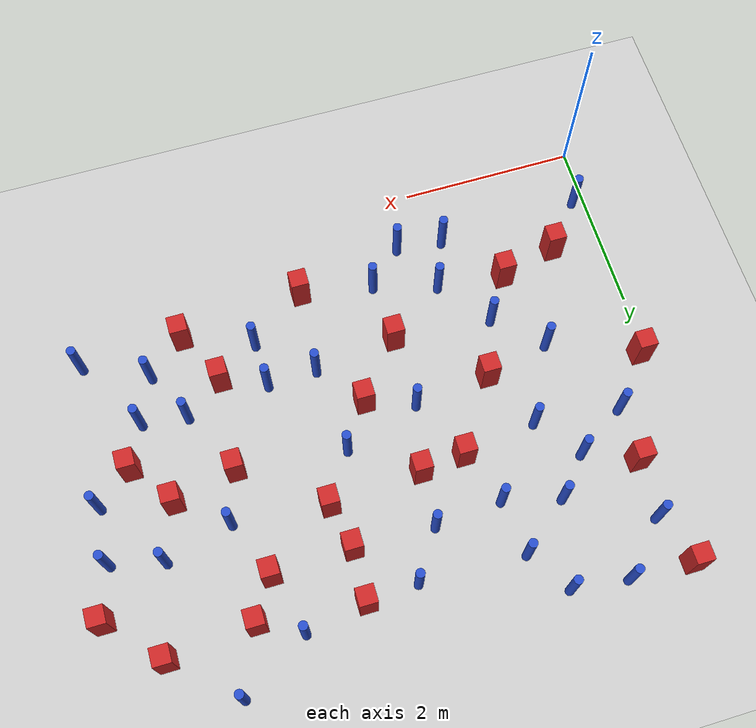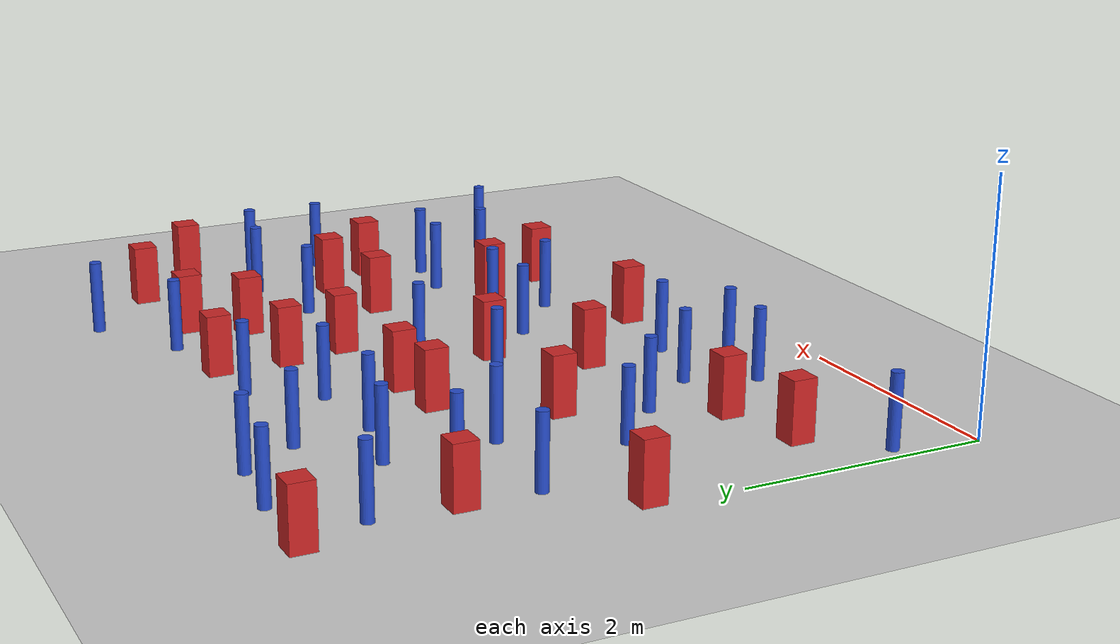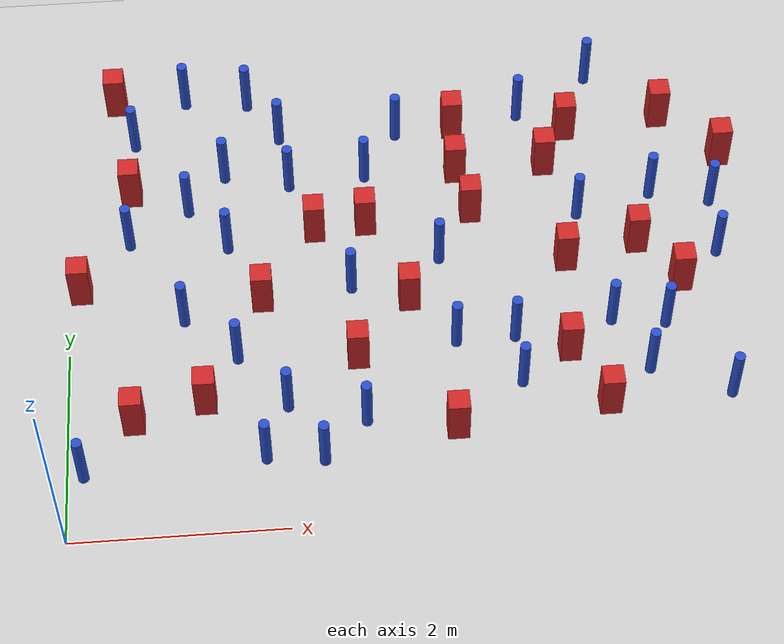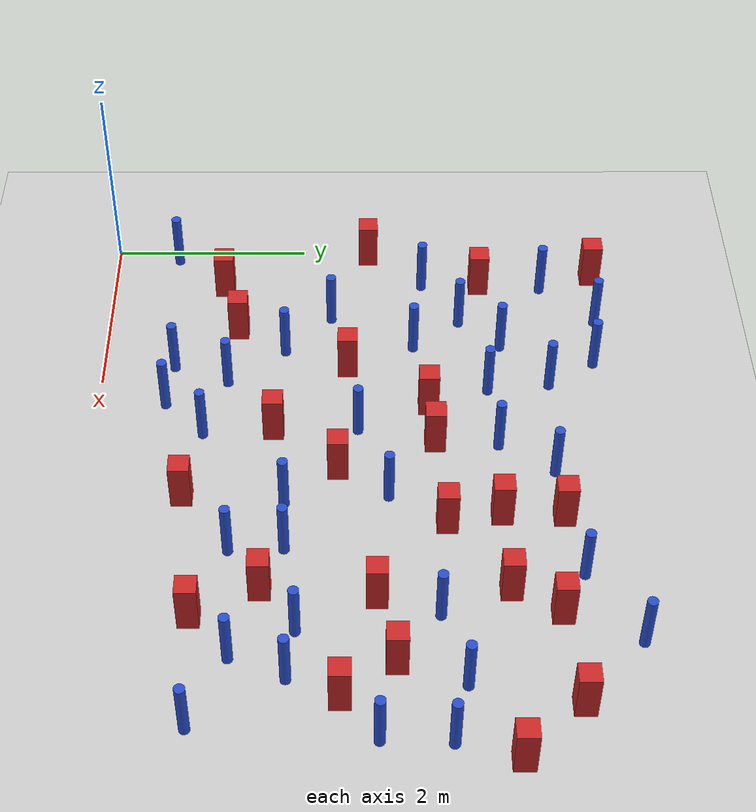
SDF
<sdf version="1.6">
 <world name="default">
  <model name="ground_plane">
   <static>1</static>
   <link name="link">
    <collision name="collision">
     <geometry><plane><normal>0 0 1</normal><size>100 100</size></plane></geometry>
     <surface><friction><ode><mu>100</mu><mu2>50</mu2></ode></friction></surface>
    </collision>
    <visual name="visual">
     <cast_shadows>0</cast_shadows>
     <geometry><plane><normal>0 0 1</normal><size>100 100</size></plane></geometry>
     <material>
      <ambient>1.0 1.0 1.0 1.0</ambient>
      <diffuse>0.8 0.8 0.8 1.0</diffuse>
      <specular>0.01 0.01 0.01 1.000000</specular>
     </material>
    </visual>
   </link>
  </model>
  <model name="pole_obstacle3">
   <static>true</static>
   <pose>4.94489135141 3.32337684646 7.38925637345e-09 -8.47170692798e-08 1.24976764937e-08 -1.74513093023e-07</pose>
   <link name="link">
    <pose>0 0 0.3 0 -0 0</pose>
    <inertial>
     <mass>1</mass>
     <inertia><ixx>0.145833</ixx><ixy>0</ixy><ixz>0</ixz><iyy>0.145833</iyy><iyz>0</iyz><izz>0.125</izz></inertia>
    </inertial>
    <collision name="collision">
     <geometry><cylinder><radius>0.05</radius><length>.6</length></cylinder></geometry>
    </collision>
    <visual name="visual">
     <geometry><cylinder><radius>0.05</radius><length>.6</length></cylinder></geometry>
     <material>
      <script><name>Gazebo/Blue</name><uri>file://media/materials/scripts/gazebo.material</uri></script>
     </material>
    </visual>
   </link>
  </model>
  <model name="pole_obstacle4">
   <static>true</static>
   <pose>2.73553386791 1.0680887343 7.38925637345e-09 -8.471706928e-08 1.24976765152e-08 -1.74513093012e-07</pose>
   <link name="link">
    <pose>0 0 0.3 0 -0 0</pose>
    <inertial>
     <mass>1</mass>
     <inertia><ixx>0.145833</ixx><ixy>0</ixy><ixz>0</ixz><iyy>0.145833</iyy><iyz>0</iyz><izz>0.125</izz></inertia>
    </inertial>
    <collision name="collision">
     <geometry><cylinder><radius>0.05</radius><length>.6</length></cylinder></geometry>
    </collision>
    <visual name="visual">
     <geometry><cylinder><radius>0.05</radius><length>.6</length></cylinder></geometry>
     <material>
      <script><name>Gazebo/Blue</name><uri>file://media/materials/scripts/gazebo.material</uri></script>
     </material>
    </visual>
   </link>
  </model>
  <model name="pole_obstacle5">
   <static>true</static>
   <pose>4.18884010764 1.90581035979 7.38925637345e-09 -8.471706928e-08 1.24976765134e-08 -1.74513093015e-07</pose>
   <link name="link">
    <pose>0 0 0.3 0 -0 0</pose>
    <inertial>
     <mass>1</mass>
     <inertia><ixx>0.145833</ixx><ixy>0</ixy><ixz>0</ixz><iyy>0.145833</iyy><iyz>0</iyz><izz>0.125</izz></inertia>
    </inertial>
    <collision name="collision">
     <geometry><cylinder><radius>0.05</radius><length>.6</length></cylinder></geometry>
    </collision>
    <visual name="visual">
     <geometry><cylinder><radius>0.05</radius><length>.6</length></cylinder></geometry>
     <material>
      <script><name>Gazebo/Blue</name><uri>file://media/materials/scripts/gazebo.material</uri></script>
     </material>
    </visual>
   </link>
  </model>
  <model name="square_post_obstacle12">
   <static>true</static>
   <pose>2.69776393869 1.7626080825 1.91545236811e-07 -7.35059704564e-06 1.12565212e-07 2.39332434364e-05</pose>
   <link name="link">
    <pose>0 0 0.25 0 -0 0</pose>
    <inertial>
     <mass>100</mass>
     <inertia>
      <ixx>0.166667</ixx>
      <ixy>0</ixy>
      <ixz>0</ixz>
      <iyy>0.166667</iyy>
      <iyz>0</iyz>
      <izz>0.166667</izz>
     </inertia>
    </inertial>
    <collision name="collision"><geometry><box><size>.2 .2 .5</size></box></geometry></collision>
    <visual name="visual">
     <geometry><box><size>.2 .2 .5</size></box></geometry>
     <material>
      <script><name>Gazebo/Red</name><uri>file://media/materials/scripts/gazebo.material</uri></script>
     </material>
    </visual>
   </link>
  </model>
  <model name="square_post_obstacle14">
   <static>true</static>
   <pose>3.55823253069 0.921977844736 1.91545236811e-07 -7.35059704564e-06 1.12565212e-07 2.39332434364e-05</pose>
   <link name="link">
    <pose>0 0 0.25 0 -0 0</pose>
    <inertial>
     <mass>100</mass>
     <inertia>
      <ixx>0.166667</ixx>
      <ixy>0</ixy>
      <ixz>0</ixz>
      <iyy>0.166667</iyy>
      <iyz>0</iyz>
      <izz>0.166667</izz>
     </inertia>
    </inertial>
    <collision name="collision"><geometry><box><size>.2 .2 .5</size></box></geometry></collision>
    <visual name="visual">
     <geometry><box><size>.2 .2 .5</size></box></geometry>
     <material>
      <script><name>Gazebo/Red</name><uri>file://media/materials/scripts/gazebo.material</uri></script>
     </material>
    </visual>
   </link>
  </model>
  <model name="square_post_obstacle18">
   <static>true</static>
   <pose>2.3626673813 3.28751693555 1.91545236811e-07 -7.35059704564e-06 1.12565212e-07 2.39332434364e-05</pose>
   <link name="link">
    <pose>0 0 0.25 0 -0 0</pose>
    <inertial>
     <mass>100</mass>
     <inertia>
      <ixx>0.166667</ixx>
      <ixy>0</ixy>
      <ixz>0</ixz>
      <iyy>0.166667</iyy>
      <iyz>0</iyz>
      <izz>0.166667</izz>
     </inertia>
    </inertial>
    <collision name="collision"><geometry><box><size>.2 .2 .5</size></box></geometry></collision>
    <visual name="visual">
     <geometry><box><size>.2 .2 .5</size></box></geometry>
     <material>
      <script><name>Gazebo/Red</name><uri>file://media/materials/scripts/gazebo.material</uri></script>
     </material>
    </visual>
   </link>
  </model>
  <model name="pole_obstacle16">
   <static>true</static>
   <pose>1.51421802723 3.15513859682 7.38925637345e-09 -8.47170692799e-08 1.24976765053e-08 -1.74513093017e-07</pose>
   <link name="link">
    <pose>0 0 0.3 0 -0 0</pose>
    <inertial>
     <mass>1</mass>
     <inertia><ixx>0.145833</ixx><ixy>0</ixy><ixz>0</ixz><iyy>0.145833</iyy><iyz>0</iyz><izz>0.125</izz></inertia>
    </inertial>
    <collision name="collision">
     <geometry><cylinder><radius>0.05</radius><length>.6</length></cylinder></geometry>
    </collision>
    <visual name="visual">
     <geometry><cylinder><radius>0.05</radius><length>.6</length></cylinder></geometry>
     <material>
      <script><name>Gazebo/Blue</name><uri>file://media/materials/scripts/gazebo.material</uri></script>
     </material>
    </visual>
   </link>
  </model>
  <model name="square_post_obstacle26">
   <static>true</static>
   <pose>0.60805384781 1.18231266927 1.91545236811e-07 -7.35059704564e-06 1.12565212e-07 2.39332434364e-05</pose>
   <link name="link">
    <pose>0 0 0.25 0 -0 0</pose>
    <inertial>
     <mass>100</mass>
     <inertia>
      <ixx>0.166667</ixx>
      <ixy>0</ixy>
      <ixz>0</ixz>
      <iyy>0.166667</iyy>
      <iyz>0</iyz>
      <izz>0.166667</izz>
     </inertia>
    </inertial>
    <collision name="collision"><geometry><box><size>.2 .2 .5</size></box></geometry></collision>
    <visual name="visual">
     <geometry><box><size>.2 .2 .5</size></box></geometry>
     <material>
      <script><name>Gazebo/Red</name><uri>file://media/materials/scripts/gazebo.material</uri></script>
     </material>
    </visual>
   </link>
  </model>
  <model name="square_post_obstacle30">
   <static>true</static>
   <pose>3.89626264001 3.41685495448 1.91545236811e-07 -7.35059704564e-06 1.12565212e-07 2.39332434364e-05</pose>
   <link name="link">
    <pose>0 0 0.25 0 -0 0</pose>
    <inertial>
     <mass>100</mass>
     <inertia>
      <ixx>0.166667</ixx>
      <ixy>0</ixy>
      <ixz>0</ixz>
      <iyy>0.166667</iyy>
      <iyz>0</iyz>
      <izz>0.166667</izz>
     </inertia>
    </inertial>
    <collision name="collision"><geometry><box><size>.2 .2 .5</size></box></geometry></collision>
    <visual name="visual">
     <geometry><box><size>.2 .2 .5</size></box></geometry>
     <material>
      <script><name>Gazebo/Red</name><uri>file://media/materials/scripts/gazebo.material</uri></script>
     </material>
    </visual>
   </link>
  </model>
  <model name="pole_obstacle21">
   <static>true</static>
   <pose>1.50616827734 4.04670296507 7.38925637345e-09 -8.47170692799e-08 1.24976765024e-08 -1.7451309302e-07</pose>
   <link name="link">
    <pose>0 0 0.3 0 -0 0</pose>
    <inertial>
     <mass>1</mass>
     <inertia><ixx>0.145833</ixx><ixy>0</ixy><ixz>0</ixz><iyy>0.145833</iyy><iyz>0</iyz><izz>0.125</izz></inertia>
    </inertial>
    <collision name="collision">
     <geometry><cylinder><radius>0.05</radius><length>.6</length></cylinder></geometry>
    </collision>
    <visual name="visual">
     <geometry><cylinder><radius>0.05</radius><length>.6</length></cylinder></geometry>
     <material>
      <script><name>Gazebo/Blue</name><uri>file://media/materials/scripts/gazebo.material</uri></script>
     </material>
    </visual>
   </link>
  </model>
  <model name="pole_obstacle24">
   <static>true</static>
   <pose>5.69161095058 3.53189218051 7.38925637345e-09 -8.47170692798e-08 1.24976764937e-08 -1.74513093023e-07</pose>
   <link name="link">
    <pose>0 0 0.3 0 -0 0</pose>
    <inertial>
     <mass>1</mass>
     <inertia><ixx>0.145833</ixx><ixy>0</ixy><ixz>0</ixz><iyy>0.145833</iyy><iyz>0</iyz><izz>0.125</izz></inertia>
    </inertial>
    <collision name="collision">
     <geometry><cylinder><radius>0.05</radius><length>.6</length></cylinder></geometry>
    </collision>
    <visual name="visual">
     <geometry><cylinder><radius>0.05</radius><length>.6</length></cylinder></geometry>
     <material>
      <script><name>Gazebo/Blue</name><uri>file://media/materials/scripts/gazebo.material</uri></script>
     </material>
    </visual>
   </link>
  </model>
  <model name="pole_obstacle25">
   <static>true</static>
   <pose>2.89261686978 3.95484527843 7.38925637345e-09 -8.47170692796e-08 1.24976764799e-08 -1.74513093033e-07</pose>
   <link name="link">
    <pose>0 0 0.3 0 -0 0</pose>
    <inertial>
     <mass>1</mass>
     <inertia><ixx>0.145833</ixx><ixy>0</ixy><ixz>0</ixz><iyy>0.145833</iyy><iyz>0</iyz><izz>0.125</izz></inertia>
    </inertial>
    <collision name="collision">
     <geometry><cylinder><radius>0.05</radius><length>.6</length></cylinder></geometry>
    </collision>
    <visual name="visual">
     <geometry><cylinder><radius>0.05</radius><length>.6</length></cylinder></geometry>
     <material>
      <script><name>Gazebo/Blue</name><uri>file://media/materials/scripts/gazebo.material</uri></script>
     </material>
    </visual>
   </link>
  </model>
  <model name="pole_obstacle26">
   <static>true</static>
   <pose>2.33008724829 0.674210006584 7.38925637345e-09 -8.471706928e-08 1.24976765177e-08 -1.74513093012e-07</pose>
   <link name="link">
    <pose>0 0 0.3 0 -0 0</pose>
    <inertial>
     <mass>1</mass>
     <inertia><ixx>0.145833</ixx><ixy>0</ixy><ixz>0</ixz><iyy>0.145833</iyy><iyz>0</iyz><izz>0.125</izz></inertia>
    </inertial>
    <collision name="collision">
     <geometry><cylinder><radius>0.05</radius><length>.6</length></cylinder></geometry>
    </collision>
    <visual name="visual">
     <geometry><cylinder><radius>0.05</radius><length>.6</length></cylinder></geometry>
     <material>
      <script><name>Gazebo/Blue</name><uri>file://media/materials/scripts/gazebo.material</uri></script>
     </material>
    </visual>
   </link>
  </model>
  <model name="pole_obstacle38">
   <static>true</static>
   <pose>4.20670044921 1.3883979573 7.38925637345e-09 -8.471706928e-08 1.24976765134e-08 -1.74513093015e-07</pose>
   <link name="link">
    <pose>0 0 0.3 0 -0 0</pose>
    <inertial>
     <mass>1</mass>
     <inertia><ixx>0.145833</ixx><ixy>0</ixy><ixz>0</ixz><iyy>0.145833</iyy><iyz>0</iyz><izz>0.125</izz></inertia>
    </inertial>
    <collision name="collision">
     <geometry><cylinder><radius>0.05</radius><length>.6</length></cylinder></geometry>
    </collision>
    <visual name="visual">
     <geometry><cylinder><radius>0.05</radius><length>.6</length></cylinder></geometry>
     <material>
      <script><name>Gazebo/Blue</name><uri>file://media/materials/scripts/gazebo.material</uri></script>
     </material>
    </visual>
   </link>
  </model>
  <model name="square_post_obstacle43">
   <static>true</static>
   <pose>1.82853170779 2.48502006109 1.91545236811e-07 -7.35059704564e-06 1.12565212e-07 2.39332434364e-05</pose>
   <link name="link">
    <pose>0 0 0.25 0 -0 0</pose>
    <inertial>
     <mass>100</mass>
     <inertia>
      <ixx>0.166667</ixx>
      <ixy>0</ixy>
      <ixz>0</ixz>
      <iyy>0.166667</iyy>
      <iyz>0</iyz>
      <izz>0.166667</izz>
     </inertia>
    </inertial>
    <collision name="collision"><geometry><box><size>.2 .2 .5</size></box></geometry></collision>
    <visual name="visual">
     <geometry><box><size>.2 .2 .5</size></box></geometry>
     <material>
      <script><name>Gazebo/Red</name><uri>file://media/materials/scripts/gazebo.material</uri></script>
     </material>
    </visual>
   </link>
  </model>
  <model name="square_post_obstacle45">
   <static>true</static>
   <pose>5.47297534964 2.92314801052 1.91545236811e-07 -7.35059704564e-06 1.12565212e-07 2.39332434364e-05</pose>
   <link name="link">
    <pose>0 0 0.25 0 -0 0</pose>
    <inertial>
     <mass>100</mass>
     <inertia>
      <ixx>0.166667</ixx>
      <ixy>0</ixy>
      <ixz>0</ixz>
      <iyy>0.166667</iyy>
      <iyz>0</iyz>
      <izz>0.166667</izz>
     </inertia>
    </inertial>
    <collision name="collision"><geometry><box><size>.2 .2 .5</size></box></geometry></collision>
    <visual name="visual">
     <geometry><box><size>.2 .2 .5</size></box></geometry>
     <material>
      <script><name>Gazebo/Red</name><uri>file://media/materials/scripts/gazebo.material</uri></script>
     </material>
    </visual>
   </link>
  </model>
  <model name="pole_obstacle46">
   <static>true</static>
   <pose>5.12069149766 2.02881081584 7.38925637345e-09 -8.47170692799e-08 1.24976765078e-08 -1.74513093016e-07</pose>
   <link name="link">
    <pose>0 0 0.3 0 -0 0</pose>
    <inertial>
     <mass>1</mass>
     <inertia><ixx>0.145833</ixx><ixy>0</ixy><ixz>0</ixz><iyy>0.145833</iyy><iyz>0</iyz><izz>0.125</izz></inertia>
    </inertial>
    <collision name="collision">
     <geometry><cylinder><radius>0.05</radius><length>.6</length></cylinder></geometry>
    </collision>
    <visual name="visual">
     <geometry><cylinder><radius>0.05</radius><length>.6</length></cylinder></geometry>
     <material>
      <script><name>Gazebo/Blue</name><uri>file://media/materials/scripts/gazebo.material</uri></script>
     </material>
    </visual>
   </link>
  </model>
  <model name="pole_obstacle64">
   <static>true</static>
   <pose>5.23931463367 5.09658619199 7.38925637345e-09 -8.47170692796e-08 1.24976764786e-08 -1.74513093032e-07</pose>
   <link name="link">
    <pose>0 0 0.3 0 -0 0</pose>
    <inertial>
     <mass>1</mass>
     <inertia><ixx>0.145833</ixx><ixy>0</ixy><ixz>0</ixz><iyy>0.145833</iyy><iyz>0</iyz><izz>0.125</izz></inertia>
    </inertial>
    <collision name="collision">
     <geometry><cylinder><radius>0.05</radius><length>.6</length></cylinder></geometry>
    </collision>
    <visual name="visual">
     <geometry><cylinder><radius>0.05</radius><length>.6</length></cylinder></geometry>
     <material>
      <script><name>Gazebo/Blue</name><uri>file://media/materials/scripts/gazebo.material</uri></script>
     </material>
    </visual>
   </link>
  </model>
  <model name="pole_obstacle65">
   <static>true</static>
   <pose>3.62964904821 1.88961797035 7.38925637345e-09 -8.471706928e-08 1.24976765152e-08 -1.74513093012e-07</pose>
   <link name="link">
    <pose>0 0 0.3 0 -0 0</pose>
    <inertial>
     <mass>1</mass>
     <inertia><ixx>0.145833</ixx><ixy>0</ixy><ixz>0</ixz><iyy>0.145833</iyy><iyz>0</iyz><izz>0.125</izz></inertia>
    </inertial>
    <collision name="collision">
     <geometry><cylinder><radius>0.05</radius><length>.6</length></cylinder></geometry>
    </collision>
    <visual name="visual">
     <geometry><cylinder><radius>0.05</radius><length>.6</length></cylinder></geometry>
     <material>
      <script><name>Gazebo/Blue</name><uri>file://media/materials/scripts/gazebo.material</uri></script>
     </material>
    </visual>
   </link>
  </model>
  <model name="square_post_obstacle69">
   <static>true</static>
   <pose>3.22333825392 2.39546127289 1.91545236811e-07 -7.35059704564e-06 1.12565212e-07 2.39332434364e-05</pose>
   <link name="link">
    <pose>0 0 0.25 0 -0 0</pose>
    <inertial>
     <mass>100</mass>
     <inertia>
      <ixx>0.166667</ixx>
      <ixy>0</ixy>
      <ixz>0</ixz>
      <iyy>0.166667</iyy>
      <iyz>0</iyz>
      <izz>0.166667</izz>
     </inertia>
    </inertial>
    <collision name="collision"><geometry><box><size>.2 .2 .5</size></box></geometry></collision>
    <visual name="visual">
     <geometry><box><size>.2 .2 .5</size></box></geometry>
     <material>
      <script><name>Gazebo/Red</name><uri>file://media/materials/scripts/gazebo.material</uri></script>
     </material>
    </visual>
   </link>
  </model>
  <model name="pole_obstacle86">
   <static>true</static>
   <pose>1.13241418858 5.05356822126 7.38925637345e-09 -8.47170692799e-08 1.24976765033e-08 -1.74513093018e-07</pose>
   <link name="link">
    <pose>0 0 0.3 0 -0 0</pose>
    <inertial>
     <mass>1</mass>
     <inertia><ixx>0.145833</ixx><ixy>0</ixy><ixz>0</ixz><iyy>0.145833</iyy><iyz>0</iyz><izz>0.125</izz></inertia>
    </inertial>
    <collision name="collision">
     <geometry><cylinder><radius>0.05</radius><length>.6</length></cylinder></geometry>
    </collision>
    <visual name="visual">
     <geometry><cylinder><radius>0.05</radius><length>.6</length></cylinder></geometry>
     <material>
      <script><name>Gazebo/Blue</name><uri>file://media/materials/scripts/gazebo.material</uri></script>
     </material>
    </visual>
   </link>
  </model>
  <model name="pole_obstacle95">
   <static>true</static>
   <pose>1.75539662022 4.9828074328 7.38925637345e-09 -8.47170692799e-08 1.24976765033e-08 -1.74513093018e-07</pose>
   <link name="link">
    <pose>0 0 0.3 0 -0 0</pose>
    <inertial>
     <mass>1</mass>
     <inertia><ixx>0.145833</ixx><ixy>0</ixy><ixz>0</ixz><iyy>0.145833</iyy><iyz>0</iyz><izz>0.125</izz></inertia>
    </inertial>
    <collision name="collision">
     <geometry><cylinder><radius>0.05</radius><length>.6</length></cylinder></geometry>
    </collision>
    <visual name="visual">
     <geometry><cylinder><radius>0.05</radius><length>.6</length></cylinder></geometry>
     <material>
      <script><name>Gazebo/Blue</name><uri>file://media/materials/scripts/gazebo.material</uri></script>
     </material>
    </visual>
   </link>
  </model>
  <model name="square_post_obstacle86">
   <static>true</static>
   <pose>5.90157702615 4.50833892768 1.91545236811e-07 -7.35059704564e-06 1.12565212e-07 2.39332434364e-05</pose>
   <link name="link">
    <pose>0 0 0.25 0 -0 0</pose>
    <inertial>
     <mass>100</mass>
     <inertia>
      <ixx>0.166667</ixx>
      <ixy>0</ixy>
      <ixz>0</ixz>
      <iyy>0.166667</iyy>
      <iyz>0</iyz>
      <izz>0.166667</izz>
     </inertia>
    </inertial>
    <collision name="collision"><geometry><box><size>.2 .2 .5</size></box></geometry></collision>
    <visual name="visual">
     <geometry><box><size>.2 .2 .5</size></box></geometry>
     <material>
      <script><name>Gazebo/Red</name><uri>file://media/materials/scripts/gazebo.material</uri></script>
     </material>
    </visual>
   </link>
  </model>
  <model name="square_post_obstacle90">
   <static>true</static>
   <pose>5.83969783324 2.43143702695 1.91545236811e-07 -7.35059704564e-06 1.12565212e-07 2.39332434364e-05</pose>
   <link name="link">
    <pose>0 0 0.25 0 -0 0</pose>
    <inertial>
     <mass>100</mass>
     <inertia>
      <ixx>0.166667</ixx>
      <ixy>0</ixy>
      <ixz>0</ixz>
      <iyy>0.166667</iyy>
      <iyz>0</iyz>
      <izz>0.166667</izz>
     </inertia>
    </inertial>
    <collision name="collision"><geometry><box><size>.2 .2 .5</size></box></geometry></collision>
    <visual name="visual">
     <geometry><box><size>.2 .2 .5</size></box></geometry>
     <material>
      <script><name>Gazebo/Red</name><uri>file://media/materials/scripts/gazebo.material</uri></script>
     </material>
    </visual>
   </link>
  </model>
  <model name="pole_obstacle103">
   <static>true</static>
   <pose>2.06382653426 4.5097343762 7.38925637345e-09 -8.47170692798e-08 1.24976765033e-08 -1.74513093019e-07</pose>
   <link name="link">
    <pose>0 0 0.3 0 -0 0</pose>
    <inertial>
     <mass>1</mass>
     <inertia><ixx>0.145833</ixx><ixy>0</ixy><ixz>0</ixz><iyy>0.145833</iyy><iyz>0</iyz><izz>0.125</izz></inertia>
    </inertial>
    <collision name="collision">
     <geometry><cylinder><radius>0.05</radius><length>.6</length></cylinder></geometry>
    </collision>
    <visual name="visual">
     <geometry><cylinder><radius>0.05</radius><length>.6</length></cylinder></geometry>
     <material>
      <script><name>Gazebo/Blue</name><uri>file://media/materials/scripts/gazebo.material</uri></script>
     </material>
    </visual>
   </link>
  </model>
  <model name="pole_obstacle108">
   <static>true</static>
   <pose>6.24385931577 2.7644196099 7.38925637345e-09 -8.47170692798e-08 1.24976764937e-08 -1.74513093023e-07</pose>
   <link name="link">
    <pose>0 0 0.3 0 -0 0</pose>
    <inertial>
     <mass>1</mass>
     <inertia><ixx>0.145833</ixx><ixy>0</ixy><ixz>0</ixz><iyy>0.145833</iyy><iyz>0</iyz><izz>0.125</izz></inertia>
    </inertial>
    <collision name="collision">
     <geometry><cylinder><radius>0.05</radius><length>.6</length></cylinder></geometry>
    </collision>
    <visual name="visual">
     <geometry><cylinder><radius>0.05</radius><length>.6</length></cylinder></geometry>
     <material>
      <script><name>Gazebo/Blue</name><uri>file://media/materials/scripts/gazebo.material</uri></script>
     </material>
    </visual>
   </link>
  </model>
  <model name="pole_obstacle113">
   <static>true</static>
   <pose>0.566681114415 3.26431082532 7.38925637345e-09 -8.47170692799e-08 1.2497676509e-08 -1.74513093016e-07</pose>
   <link name="link">
    <pose>0 0 0.3 0 -0 0</pose>
    <inertial>
     <mass>1</mass>
     <inertia><ixx>0.145833</ixx><ixy>0</ixy><ixz>0</ixz><iyy>0.145833</iyy><iyz>0</iyz><izz>0.125</izz></inertia>
    </inertial>
    <collision name="collision">
     <geometry><cylinder><radius>0.05</radius><length>.6</length></cylinder></geometry>
    </collision>
    <visual name="visual">
     <geometry><cylinder><radius>0.05</radius><length>.6</length></cylinder></geometry>
     <material>
      <script><name>Gazebo/Blue</name><uri>file://media/materials/scripts/gazebo.material</uri></script>
     </material>
    </visual>
   </link>
  </model>
  <model name="square_post_obstacle106">
   <static>true</static>
   <pose>2.86188026682 3.33638947979 1.91545236811e-07 -7.35059704564e-06 1.12565212e-07 2.39332434364e-05</pose>
   <link name="link">
    <pose>0 0 0.25 0 -0 0</pose>
    <inertial>
     <mass>100</mass>
     <inertia>
      <ixx>0.166667</ixx>
      <ixy>0</ixy>
      <ixz>0</ixz>
      <iyy>0.166667</iyy>
      <iyz>0</iyz>
      <izz>0.166667</izz>
     </inertia>
    </inertial>
    <collision name="collision"><geometry><box><size>.2 .2 .5</size></box></geometry></collision>
    <visual name="visual">
     <geometry><box><size>.2 .2 .5</size></box></geometry>
     <material>
      <script><name>Gazebo/Red</name><uri>file://media/materials/scripts/gazebo.material</uri></script>
     </material>
    </visual>
   </link>
  </model>
  <model name="pole_obstacle119">
   <static>true</static>
   <pose>6.12903943306 1.12662715279 7.38925637345e-09 -8.471706928e-08 1.24976765134e-08 -1.74513093015e-07</pose>
   <link name="link">
    <pose>0 0 0.3 0 -0 0</pose>
    <inertial>
     <mass>1</mass>
     <inertia><ixx>0.145833</ixx><ixy>0</ixy><ixz>0</ixz><iyy>0.145833</iyy><iyz>0</iyz><izz>0.125</izz></inertia>
    </inertial>
    <collision name="collision">
     <geometry><cylinder><radius>0.05</radius><length>.6</length></cylinder></geometry>
    </collision>
    <visual name="visual">
     <geometry><cylinder><radius>0.05</radius><length>.6</length></cylinder></geometry>
     <material>
      <script><name>Gazebo/Blue</name><uri>file://media/materials/scripts/gazebo.material</uri></script>
     </material>
    </visual>
   </link>
  </model>
  <model name="square_post_obstacle108">
   <static>true</static>
   <pose>4.94047236119 4.40586619042 1.91545236811e-07 -7.35059704564e-06 1.12565212e-07 2.39332434364e-05</pose>
   <link name="link">
    <pose>0 0 0.25 0 -0 0</pose>
    <inertial>
     <mass>100</mass>
     <inertia>
      <ixx>0.166667</ixx>
      <ixy>0</ixy>
      <ixz>0</ixz>
      <iyy>0.166667</iyy>
      <iyz>0</iyz>
      <izz>0.166667</izz>
     </inertia>
    </inertial>
    <collision name="collision"><geometry><box><size>.2 .2 .5</size></box></geometry></collision>
    <visual name="visual">
     <geometry><box><size>.2 .2 .5</size></box></geometry>
     <material>
      <script><name>Gazebo/Red</name><uri>file://media/materials/scripts/gazebo.material</uri></script>
     </material>
    </visual>
   </link>
  </model>
  <model name="pole_obstacle120">
   <static>true</static>
   <pose>5.40963596777 1.44978839193 7.38925637345e-09 -8.471706928e-08 1.24976765134e-08 -1.74513093015e-07</pose>
   <link name="link">
    <pose>0 0 0.3 0 -0 0</pose>
    <inertial>
     <mass>1</mass>
     <inertia><ixx>0.145833</ixx><ixy>0</ixy><ixz>0</ixz><iyy>0.145833</iyy><iyz>0</iyz><izz>0.125</izz></inertia>
    </inertial>
    <collision name="collision">
     <geometry><cylinder><radius>0.05</radius><length>.6</length></cylinder></geometry>
    </collision>
    <visual name="visual">
     <geometry><cylinder><radius>0.05</radius><length>.6</length></cylinder></geometry>
     <material>
      <script><name>Gazebo/Blue</name><uri>file://media/materials/scripts/gazebo.material</uri></script>
     </material>
    </visual>
   </link>
  </model>
  <model name="pole_obstacle138">
   <static>true</static>
   <pose>1.80326081364 0.730148123916 7.38925637345e-09 -8.47170692799e-08 1.24976765075e-08 -1.74513093017e-07</pose>
   <link name="link">
    <pose>0 0 0.3 0 -0 0</pose>
    <inertial>
     <mass>1</mass>
     <inertia><ixx>0.145833</ixx><ixy>0</ixy><ixz>0</ixz><iyy>0.145833</iyy><iyz>0</iyz><izz>0.125</izz></inertia>
    </inertial>
    <collision name="collision">
     <geometry><cylinder><radius>0.05</radius><length>.6</length></cylinder></geometry>
    </collision>
    <visual name="visual">
     <geometry><cylinder><radius>0.05</radius><length>.6</length></cylinder></geometry>
     <material>
      <script><name>Gazebo/Blue</name><uri>file://media/materials/scripts/gazebo.material</uri></script>
     </material>
    </visual>
   </link>
  </model>
  <model name="square_post_obstacle119">
   <static>true</static>
   <pose>0.432504302023 5.06790949704 1.91545236811e-07 -7.35059704564e-06 1.12565212e-07 2.39332434364e-05</pose>
   <link name="link">
    <pose>0 0 0.25 0 -0 0</pose>
    <inertial>
     <mass>100</mass>
     <inertia>
      <ixx>0.166667</ixx>
      <ixy>0</ixy>
      <ixz>0</ixz>
      <iyy>0.166667</iyy>
      <iyz>0</iyz>
      <izz>0.166667</izz>
     </inertia>
    </inertial>
    <collision name="collision"><geometry><box><size>.2 .2 .5</size></box></geometry></collision>
    <visual name="visual">
     <geometry><box><size>.2 .2 .5</size></box></geometry>
     <material>
      <script><name>Gazebo/Red</name><uri>file://media/materials/scripts/gazebo.material</uri></script>
     </material>
    </visual>
   </link>
  </model>
  <model name="square_post_obstacle120">
   <static>true</static>
   <pose>1.26690899558 1.35922414242 1.91545236811e-07 -7.35059704564e-06 1.12565212e-07 2.39332434364e-05</pose>
   <link name="link">
    <pose>0 0 0.25 0 -0 0</pose>
    <inertial>
     <mass>100</mass>
     <inertia>
      <ixx>0.166667</ixx>
      <ixy>0</ixy>
      <ixz>0</ixz>
      <iyy>0.166667</iyy>
      <iyz>0</iyz>
      <izz>0.166667</izz>
     </inertia>
    </inertial>
    <collision name="collision"><geometry><box><size>.2 .2 .5</size></box></geometry></collision>
    <visual name="visual">
     <geometry><box><size>.2 .2 .5</size></box></geometry>
     <material>
      <script><name>Gazebo/Red</name><uri>file://media/materials/scripts/gazebo.material</uri></script>
     </material>
    </visual>
   </link>
  </model>
  <model name="square_post_obstacle134">
   <static>true</static>
   <pose>4.76444825578 2.75599154242 1.91545236811e-07 -7.35059704564e-06 1.12565212e-07 2.39332434364e-05</pose>
   <link name="link">
    <pose>0 0 0.25 0 -0 0</pose>
    <inertial>
     <mass>100</mass>
     <inertia>
      <ixx>0.166667</ixx>
      <ixy>0</ixy>
      <ixz>0</ixz>
      <iyy>0.166667</iyy>
      <iyz>0</iyz>
      <izz>0.166667</izz>
     </inertia>
    </inertial>
    <collision name="collision"><geometry><box><size>.2 .2 .5</size></box></geometry></collision>
    <visual name="visual">
     <geometry><box><size>.2 .2 .5</size></box></geometry>
     <material>
      <script><name>Gazebo/Red</name><uri>file://media/materials/scripts/gazebo.material</uri></script>
     </material>
    </visual>
   </link>
  </model>
  <model name="pole_obstacle150">
   <static>true</static>
   <pose>3.23842855693 4.4789834165 7.38925637345e-09 -8.47170692798e-08 1.24976765033e-08 -1.74513093019e-07</pose>
   <link name="link">
    <pose>0 0 0.3 0 -0 0</pose>
    <inertial>
     <mass>1</mass>
     <inertia><ixx>0.145833</ixx><ixy>0</ixy><ixz>0</ixz><iyy>0.145833</iyy><iyz>0</iyz><izz>0.125</izz></inertia>
    </inertial>
    <collision name="collision">
     <geometry><cylinder><radius>0.05</radius><length>.6</length></cylinder></geometry>
    </collision>
    <visual name="visual">
     <geometry><cylinder><radius>0.05</radius><length>.6</length></cylinder></geometry>
     <material>
      <script><name>Gazebo/Blue</name><uri>file://media/materials/scripts/gazebo.material</uri></script>
     </material>
    </visual>
   </link>
  </model>
  <model name="square_post_obstacle143">
   <static>true</static>
   <pose>4.9783666677 1.08553705494 1.91545236811e-07 -7.35059704564e-06 1.12565212e-07 2.39332434364e-05</pose>
   <link name="link">
    <pose>0 0 0.25 0 -0 0</pose>
    <inertial>
     <mass>100</mass>
     <inertia>
      <ixx>0.166667</ixx>
      <ixy>0</ixy>
      <ixz>0</ixz>
      <iyy>0.166667</iyy>
      <iyz>0</iyz>
      <izz>0.166667</izz>
     </inertia>
    </inertial>
    <collision name="collision"><geometry><box><size>.2 .2 .5</size></box></geometry></collision>
    <visual name="visual">
     <geometry><box><size>.2 .2 .5</size></box></geometry>
     <material>
      <script><name>Gazebo/Red</name><uri>file://media/materials/scripts/gazebo.material</uri></script>
     </material>
    </visual>
   </link>
  </model>
  <model name="pole_obstacle155">
   <static>true</static>
   <pose>2.13968979167 3.8889621518 7.38925637345e-09 -8.47170692798e-08 1.24976764939e-08 -1.74513093025e-07</pose>
   <link name="link">
    <pose>0 0 0.3 0 -0 0</pose>
    <inertial>
     <mass>1</mass>
     <inertia><ixx>0.145833</ixx><ixy>0</ixy><ixz>0</ixz><iyy>0.145833</iyy><iyz>0</iyz><izz>0.125</izz></inertia>
    </inertial>
    <collision name="collision">
     <geometry><cylinder><radius>0.05</radius><length>.6</length></cylinder></geometry>
    </collision>
    <visual name="visual">
     <geometry><cylinder><radius>0.05</radius><length>.6</length></cylinder></geometry>
     <material>
      <script><name>Gazebo/Blue</name><uri>file://media/materials/scripts/gazebo.material</uri></script>
     </material>
    </visual>
   </link>
  </model>
  <model name="pole_obstacle156">
   <static>true</static>
   <pose>6.27178978761 3.39207298315 7.38925637345e-09 -8.47170692798e-08 1.24976764937e-08 -1.74513093023e-07</pose>
   <link name="link">
    <pose>0 0 0.3 0 -0 0</pose>
    <inertial>
     <mass>1</mass>
     <inertia><ixx>0.145833</ixx><ixy>0</ixy><ixz>0</ixz><iyy>0.145833</iyy><iyz>0</iyz><izz>0.125</izz></inertia>
    </inertial>
    <collision name="collision">
     <geometry><cylinder><radius>0.05</radius><length>.6</length></cylinder></geometry>
    </collision>
    <visual name="visual">
     <geometry><cylinder><radius>0.05</radius><length>.6</length></cylinder></geometry>
     <material>
      <script><name>Gazebo/Blue</name><uri>file://media/materials/scripts/gazebo.material</uri></script>
     </material>
    </visual>
   </link>
  </model>
  <model name="square_post_obstacle147">
   <static>true</static>
   <pose>0.105790323612 2.69917934761 1.91545236811e-07 -7.35059704564e-06 1.12565212e-07 2.39332434364e-05</pose>
   <link name="link">
    <pose>0 0 0.25 0 -0 0</pose>
    <inertial>
     <mass>100</mass>
     <inertia>
      <ixx>0.166667</ixx>
      <ixy>0</ixy>
      <ixz>0</ixz>
      <iyy>0.166667</iyy>
      <iyz>0</iyz>
      <izz>0.166667</izz>
     </inertia>
    </inertial>
    <collision name="collision"><geometry><box><size>.2 .2 .5</size></box></geometry></collision>
    <visual name="visual">
     <geometry><box><size>.2 .2 .5</size></box></geometry>
     <material>
      <script><name>Gazebo/Red</name><uri>file://media/materials/scripts/gazebo.material</uri></script>
     </material>
    </visual>
   </link>
  </model>
  <model name="square_post_obstacle154">
   <static>true</static>
   <pose>6.44047539574 3.95556203481 1.91545236811e-07 -7.35059704564e-06 1.12565212e-07 2.39332434364e-05</pose>
   <link name="link">
    <pose>0 0 0.25 0 -0 0</pose>
    <inertial>
     <mass>100</mass>
     <inertia>
      <ixx>0.166667</ixx>
      <ixy>0</ixy>
      <ixz>0</ixz>
      <iyy>0.166667</iyy>
      <iyz>0</iyz>
      <izz>0.166667</izz>
     </inertia>
    </inertial>
    <collision name="collision"><geometry><box><size>.2 .2 .5</size></box></geometry></collision>
    <visual name="visual">
     <geometry><box><size>.2 .2 .5</size></box></geometry>
     <material>
      <script><name>Gazebo/Red</name><uri>file://media/materials/scripts/gazebo.material</uri></script>
     </material>
    </visual>
   </link>
  </model>
  <model name="pole_obstacle167">
   <static>true</static>
   <pose>0.619913436803 4.52149615542 7.38925637345e-09 -8.471706928e-08 1.24976765086e-08 -1.74513093015e-07</pose>
   <link name="link">
    <pose>0 0 0.3 0 -0 0</pose>
    <inertial>
     <mass>1</mass>
     <inertia><ixx>0.145833</ixx><ixy>0</ixy><ixz>0</ixz><iyy>0.145833</iyy><iyz>0</iyz><izz>0.125</izz></inertia>
    </inertial>
    <collision name="collision">
     <geometry><cylinder><radius>0.05</radius><length>.6</length></cylinder></geometry>
    </collision>
    <visual name="visual">
     <geometry><cylinder><radius>0.05</radius><length>.6</length></cylinder></geometry>
     <material>
      <script><name>Gazebo/Blue</name><uri>file://media/materials/scripts/gazebo.material</uri></script>
     </material>
    </visual>
   </link>
  </model>
  <model name="square_post_obstacle161">
   <static>true</static>
   <pose>0.584609827322 3.86510926966 1.91545236811e-07 -7.35059704564e-06 1.12565212e-07 2.39332434364e-05</pose>
   <link name="link">
    <pose>0 0 0.25 0 -0 0</pose>
    <inertial>
     <mass>100</mass>
     <inertia>
      <ixx>0.166667</ixx>
      <ixy>0</ixy>
      <ixz>0</ixz>
      <iyy>0.166667</iyy>
      <iyz>0</iyz>
      <izz>0.166667</izz>
     </inertia>
    </inertial>
    <collision name="collision"><geometry><box><size>.2 .2 .5</size></box></geometry></collision>
    <visual name="visual">
     <geometry><box><size>.2 .2 .5</size></box></geometry>
     <material>
      <script><name>Gazebo/Red</name><uri>file://media/materials/scripts/gazebo.material</uri></script>
     </material>
    </visual>
   </link>
  </model>
  <model name="pole_obstacle175">
   <static>true</static>
   <pose>2.0212390969 1.27837324588 7.38925637345e-09 -8.471706928e-08 1.24976765091e-08 -1.74513093016e-07</pose>
   <link name="link">
    <pose>0 0 0.3 0 -0 0</pose>
    <inertial>
     <mass>1</mass>
     <inertia><ixx>0.145833</ixx><ixy>0</ixy><ixz>0</ixz><iyy>0.145833</iyy><iyz>0</iyz><izz>0.125</izz></inertia>
    </inertial>
    <collision name="collision">
     <geometry><cylinder><radius>0.05</radius><length>.6</length></cylinder></geometry>
    </collision>
    <visual name="visual">
     <geometry><cylinder><radius>0.05</radius><length>.6</length></cylinder></geometry>
     <material>
      <script><name>Gazebo/Blue</name><uri>file://media/materials/scripts/gazebo.material</uri></script>
     </material>
    </visual>
   </link>
  </model>
  <model name="pole_obstacle176">
   <static>true</static>
   <pose>1.14009821817 3.63577432063 7.38925637345e-09 -8.47170692799e-08 1.24976765053e-08 -1.74513093017e-07</pose>
   <link name="link">
    <pose>0 0 0.3 0 -0 0</pose>
    <inertial>
     <mass>1</mass>
     <inertia><ixx>0.145833</ixx><ixy>0</ixy><ixz>0</ixz><iyy>0.145833</iyy><iyz>0</iyz><izz>0.125</izz></inertia>
    </inertial>
    <collision name="collision">
     <geometry><cylinder><radius>0.05</radius><length>.6</length></cylinder></geometry>
    </collision>
    <visual name="visual">
     <geometry><cylinder><radius>0.05</radius><length>.6</length></cylinder></geometry>
     <material>
      <script><name>Gazebo/Blue</name><uri>file://media/materials/scripts/gazebo.material</uri></script>
     </material>
    </visual>
   </link>
  </model>
  <model name="pole_obstacle181">
   <static>true</static>
   <pose>1.08194023932 2.31217603717 7.38925637345e-09 -8.47170692799e-08 1.24976765053e-08 -1.74513093017e-07</pose>
   <link name="link">
    <pose>0 0 0.3 0 -0 0</pose>
    <inertial>
     <mass>1</mass>
     <inertia><ixx>0.145833</ixx><ixy>0</ixy><ixz>0</ixz><iyy>0.145833</iyy><iyz>0</iyz><izz>0.125</izz></inertia>
    </inertial>
    <collision name="collision">
     <geometry><cylinder><radius>0.05</radius><length>.6</length></cylinder></geometry>
    </collision>
    <visual name="visual">
     <geometry><cylinder><radius>0.05</radius><length>.6</length></cylinder></geometry>
     <material>
      <script><name>Gazebo/Blue</name><uri>file://media/materials/scripts/gazebo.material</uri></script>
     </material>
    </visual>
   </link>
  </model>
  <model name="pole_obstacle184">
   <static>true</static>
   <pose>5.6283352004 1.96036963872 7.38925637345e-09 -8.471706928e-08 1.24976765177e-08 -1.74513093012e-07</pose>
   <link name="link">
    <pose>0 0 0.3 0 -0 0</pose>
    <inertial>
     <mass>1</mass>
     <inertia><ixx>0.145833</ixx><ixy>0</ixy><ixz>0</ixz><iyy>0.145833</iyy><iyz>0</iyz><izz>0.125</izz></inertia>
    </inertial>
    <collision name="collision">
     <geometry><cylinder><radius>0.05</radius><length>.6</length></cylinder></geometry>
    </collision>
    <visual name="visual">
     <geometry><cylinder><radius>0.05</radius><length>.6</length></cylinder></geometry>
     <material>
      <script><name>Gazebo/Blue</name><uri>file://media/materials/scripts/gazebo.material</uri></script>
     </material>
    </visual>
   </link>
  </model>
  <model name="square_post_obstacle173">
   <static>true</static>
   <pose>3.79239259846 3.93386724275 1.91545236811e-07 -7.35059704564e-06 1.12565212e-07 2.39332434364e-05</pose>
   <link name="link">
    <pose>0 0 0.25 0 -0 0</pose>
    <inertial>
     <mass>100</mass>
     <inertia>
      <ixx>0.166667</ixx>
      <ixy>0</ixy>
      <ixz>0</ixz>
      <iyy>0.166667</iyy>
      <iyz>0</iyz>
      <izz>0.166667</izz>
     </inertia>
    </inertial>
    <collision name="collision"><geometry><box><size>.2 .2 .5</size></box></geometry></collision>
    <visual name="visual">
     <geometry><box><size>.2 .2 .5</size></box></geometry>
     <material>
      <script><name>Gazebo/Red</name><uri>file://media/materials/scripts/gazebo.material</uri></script>
     </material>
    </visual>
   </link>
  </model>
  <model name="square_post_obstacle175">
   <static>true</static>
   <pose>4.67876710616 1.70151942897 1.91545236811e-07 -7.35059704564e-06 1.12565212e-07 2.39332434364e-05</pose>
   <link name="link">
    <pose>0 0 0.25 0 -0 0</pose>
    <inertial>
     <mass>100</mass>
     <inertia>
      <ixx>0.166667</ixx>
      <ixy>0</ixy>
      <ixz>0</ixz>
      <iyy>0.166667</iyy>
      <iyz>0</iyz>
      <izz>0.166667</izz>
     </inertia>
    </inertial>
    <collision name="collision"><geometry><box><size>.2 .2 .5</size></box></geometry></collision>
    <visual name="visual">
     <geometry><box><size>.2 .2 .5</size></box></geometry>
     <material>
      <script><name>Gazebo/Red</name><uri>file://media/materials/scripts/gazebo.material</uri></script>
     </material>
    </visual>
   </link>
  </model>
  <model name="square_post_obstacle177">
   <static>true</static>
   <pose>4.6772970634 3.9630718711 1.91545236811e-07 -7.35059704564e-06 1.12565212e-07 2.39332434364e-05</pose>
   <link name="link">
    <pose>0 0 0.25 0 -0 0</pose>
    <inertial>
     <mass>100</mass>
     <inertia>
      <ixx>0.166667</ixx>
      <ixy>0</ixy>
      <ixz>0</ixz>
      <iyy>0.166667</iyy>
      <iyz>0</iyz>
      <izz>0.166667</izz>
     </inertia>
    </inertial>
    <collision name="collision"><geometry><box><size>.2 .2 .5</size></box></geometry></collision>
    <visual name="visual">
     <geometry><box><size>.2 .2 .5</size></box></geometry>
     <material>
      <script><name>Gazebo/Red</name><uri>file://media/materials/scripts/gazebo.material</uri></script>
     </material>
    </visual>
   </link>
  </model>
  <model name="square_post_obstacle193">
   <static>true</static>
   <pose>3.80836328531 4.51589580486 1.91545236811e-07 -7.35059704564e-06 1.12565212e-07 2.39332434364e-05</pose>
   <link name="link">
    <pose>0 0 0.25 0 -0 0</pose>
    <inertial>
     <mass>100</mass>
     <inertia>
      <ixx>0.166667</ixx>
      <ixy>0</ixy>
      <ixz>0</ixz>
      <iyy>0.166667</iyy>
      <iyz>0</iyz>
      <izz>0.166667</izz>
     </inertia>
    </inertial>
    <collision name="collision"><geometry><box><size>.2 .2 .5</size></box></geometry></collision>
    <visual name="visual">
     <geometry><box><size>.2 .2 .5</size></box></geometry>
     <material>
      <script><name>Gazebo/Red</name><uri>file://media/materials/scripts/gazebo.material</uri></script>
     </material>
    </visual>
   </link>
  </model>
  <model name="pole_obstacle191">
   <static>true</static>
   <pose>0.148978925377 0.656598786223 7.38925637345e-09 -8.47170692799e-08 1.24976764991e-08 -1.74513093021e-07</pose>
   <link name="link">
    <pose>0 0 0.3 0 -0 0</pose>
    <inertial>
     <mass>1</mass>
     <inertia><ixx>0.145833</ixx><ixy>0</ixy><ixz>0</ixz><iyy>0.145833</iyy><iyz>0</iyz><izz>0.125</izz></inertia>
    </inertial>
    <collision name="collision">
     <geometry><cylinder><radius>0.05</radius><length>.6</length></cylinder></geometry>
    </collision>
    <visual name="visual">
     <geometry><cylinder><radius>0.05</radius><length>.6</length></cylinder></geometry>
     <material>
      <script><name>Gazebo/Blue</name><uri>file://media/materials/scripts/gazebo.material</uri></script>
     </material>
    </visual>
   </link>
  </model>
  <model name="pole_obstacle196">
   <static>true</static>
   <pose>3.54825798601 2.87864160931 7.38925637345e-09 -8.47170692798e-08 1.24976764939e-08 -1.74513093025e-07</pose>
   <link name="link">
    <pose>0 0 0.3 0 -0 0</pose>
    <inertial>
     <mass>1</mass>
     <inertia><ixx>0.145833</ixx><ixy>0</ixy><ixz>0</ixz><iyy>0.145833</iyy><iyz>0</iyz><izz>0.125</izz></inertia>
    </inertial>
    <collision name="collision">
     <geometry><cylinder><radius>0.05</radius><length>.6</length></cylinder></geometry>
    </collision>
    <visual name="visual">
     <geometry><cylinder><radius>0.05</radius><length>.6</length></cylinder></geometry>
     <material>
      <script><name>Gazebo/Blue</name><uri>file://media/materials/scripts/gazebo.material</uri></script>
     </material>
    </visual>
   </link>
  </model>
  <model name="pole_obstacle203">
   <static>true</static>
   <pose>1.57373883738 1.84693596479 7.38925637345e-09 -8.471706928e-08 1.24976765079e-08 -1.74513093017e-07</pose>
   <link name="link">
    <pose>0 0 0.3 0 -0 0</pose>
    <inertial>
     <mass>1</mass>
     <inertia><ixx>0.145833</ixx><ixy>0</ixy><ixz>0</ixz><iyy>0.145833</iyy><iyz>0</iyz><izz>0.125</izz></inertia>
    </inertial>
    <collision name="collision">
     <geometry><cylinder><radius>0.05</radius><length>.6</length></cylinder></geometry>
    </collision>
    <visual name="visual">
     <geometry><cylinder><radius>0.05</radius><length>.6</length></cylinder></geometry>
     <material>
      <script><name>Gazebo/Blue</name><uri>file://media/materials/scripts/gazebo.material</uri></script>
     </material>
    </visual>
   </link>
  </model>
  <model name="pole_obstacle214">
   <static>true</static>
   <pose>4.48826380324 4.64517662689 7.38925637345e-09 -8.47170692796e-08 1.24976764786e-08 -1.74513093032e-07</pose>
   <link name="link">
    <pose>0 0 0.3 0 -0 0</pose>
    <inertial>
     <mass>1</mass>
     <inertia><ixx>0.145833</ixx><ixy>0</ixy><ixz>0</ixz><iyy>0.145833</iyy><iyz>0</iyz><izz>0.125</izz></inertia>
    </inertial>
    <collision name="collision">
     <geometry><cylinder><radius>0.05</radius><length>.6</length></cylinder></geometry>
    </collision>
    <visual name="visual">
     <geometry><cylinder><radius>0.05</radius><length>.6</length></cylinder></geometry>
     <material>
      <script><name>Gazebo/Blue</name><uri>file://media/materials/scripts/gazebo.material</uri></script>
     </material>
    </visual>
   </link>
  </model>
  <model name="pole_obstacle235">
   <static>true</static>
   <pose>2.68339000957 2.58785002078 7.38925637345e-09 -8.47170692794e-08 1.24976764549e-08 -1.74513093034e-07</pose>
   <link name="link">
    <pose>0 0 0.3 0 -0 0</pose>
    <inertial>
     <mass>1</mass>
     <inertia><ixx>0.145833</ixx><ixy>0</ixy><ixz>0</ixz><iyy>0.145833</iyy><iyz>0</iyz><izz>0.125</izz></inertia>
    </inertial>
    <collision name="collision">
     <geometry><cylinder><radius>0.05</radius><length>.6</length></cylinder></geometry>
    </collision>
    <visual name="visual">
     <geometry><cylinder><radius>0.05</radius><length>.6</length></cylinder></geometry>
     <material>
      <script><name>Gazebo/Blue</name><uri>file://media/materials/scripts/gazebo.material</uri></script>
     </material>
    </visual>
   </link>
  </model>
 </world>
</sdf>
